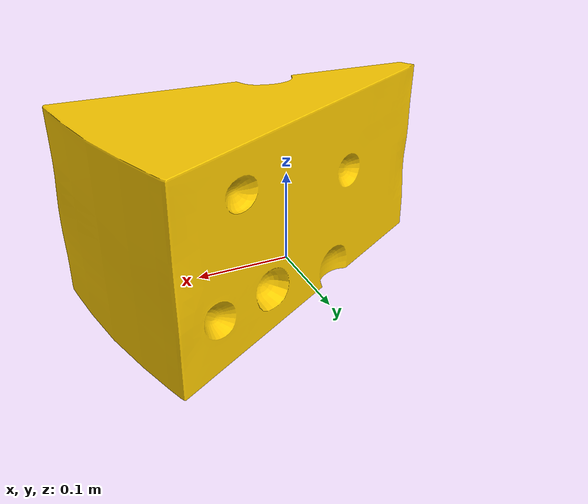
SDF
<?xml version="1.0" ?>
<sdf version="1.6">
  <model name="cheese_triangle">
    <static>false</static> <link name="link">

      <inertial>
        <mass>0.1</mass> <inertia>
          <ixx>0.0001</ixx>
          <ixy>0</ixy>
          <ixz>0</ixz>
          <iyy>0.0001</iyy>
          <iyz>0</iyz>
          <izz>0.0001</izz>
        </inertia>
      </inertial>

      <collision name="collision">
        <pose>0 0 0.2 0 0 0</pose>

        <geometry>
          <box>
            <size>0.15 0.15 0.50</size>
          </box>
        </geometry>
      </collision>

      <visual name="visual">
      <pose>0 0 -0.05 1.57 0 0</pose>
        <geometry>
          <mesh>
            <uri>model://cheese_triangle/meshes/cheese_triangle.obj</uri>
            <scale>3 3 3</scale> </mesh>
        </geometry>
        <material>
          <ambient>1 0.8 0 1</ambient>
          <diffuse>1 0.8 0 1</diffuse>
          <specular>0.1 0.1 0.1 1</specular>
        </material>
      </visual>

    </link>
  </model>
</sdf>
